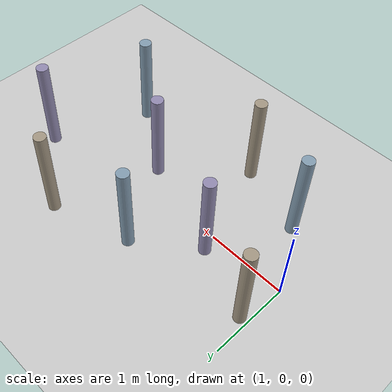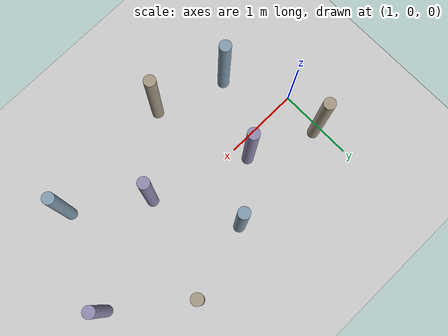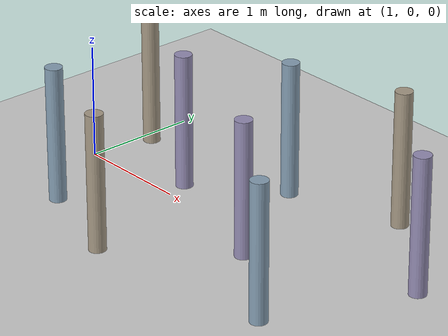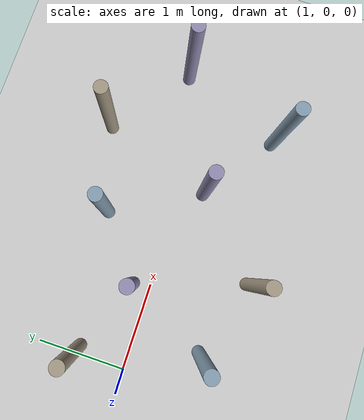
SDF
<?xml version="1.0"?>
<sdf version="1.6">
    <world name="pillar_obstacles">
        <scene>
            <ambient>0.4 0.4 0.4 1</ambient>
            <background>0.7 0.7 0.8 1</background>
            <shadows>true</shadows>
        </scene>

        <plugin name="gazebo_ros_state" filename="libgazebo_ros_state.so">
            <ros>
                <namespace>/gazebo</namespace>
            </ros>
            <update_rate>50.0</update_rate>
        </plugin>

        <light name="sun" type="directional">
            <cast_shadows>true</cast_shadows>
            <pose>0 0 10 0 0 0</pose>
            <diffuse>0.8 0.8 0.8 1</diffuse>
            <specular>0.2 0.2 0.2 1</specular>
            <attenuation>
                <range>1000</range>
                <constant>0.9</constant>
                <linear>0.01</linear>
                <quadratic>0.001</quadratic>
            </attenuation>
            <direction>-0.5 0.1 -0.9</direction>
        </light>

        <model name="ground_plane">
            <static>true</static>
            <link name="link">
                <collision name="collision">
                    <geometry>
                        <plane>
                            <normal>0 0 1</normal>
                            <size>20 20</size>
                        </plane>
                    </geometry>
                </collision>
                <visual name="visual">
                    <geometry>
                        <plane>
                            <normal>0 0 1</normal>
                            <size>20 20</size>
                        </plane>
                    </geometry>
                    <material>
                        <ambient>0.8 0.8 0.8 1</ambient>
                        <diffuse>0.8 0.8 0.8 1</diffuse>
                    </material>
                </visual>
            </link>
        </model>

        <model name="pillar_obstacle_1">
            <static>true</static>
            <pose>1.10 0.55 0.60 0 0 0</pose>
            <link name="link">
                <collision name="collision">
                    <geometry>
                        <cylinder>
                            <radius>0.075</radius>
                            <length>1.20</length>
                        </cylinder>
                    </geometry>
                </collision>
                <visual name="visual">
                    <geometry>
                        <cylinder>
                            <radius>0.075</radius>
                            <length>1.20</length>
                        </cylinder>
                    </geometry>
                    <material>
                        <ambient>0.55 0.50 0.45 1</ambient>
                        <diffuse>0.65 0.60 0.52 1</diffuse>
                    </material>
                </visual>
            </link>
        </model>

        <model name="pillar_obstacle_2">
            <static>true</static>
            <pose>1.45 -0.75 0.60 0 0 0</pose>
            <link name="link">
                <collision name="collision">
                    <geometry>
                        <cylinder>
                            <radius>0.075</radius>
                            <length>1.20</length>
                        </cylinder>
                    </geometry>
                </collision>
                <visual name="visual">
                    <geometry>
                        <cylinder>
                            <radius>0.075</radius>
                            <length>1.20</length>
                        </cylinder>
                    </geometry>
                    <material>
                        <ambient>0.45 0.52 0.58 1</ambient>
                        <diffuse>0.52 0.62 0.70 1</diffuse>
                    </material>
                </visual>
            </link>
        </model>

        <model name="pillar_obstacle_3">
            <static>true</static>
            <pose>1.95 0.20 0.60 0 0 0</pose>
            <link name="link">
                <collision name="collision">
                    <geometry>
                        <cylinder>
                            <radius>0.075</radius>
                            <length>1.20</length>
                        </cylinder>
                    </geometry>
                </collision>
                <visual name="visual">
                    <geometry>
                        <cylinder>
                            <radius>0.075</radius>
                            <length>1.20</length>
                        </cylinder>
                    </geometry>
                    <material>
                        <ambient>0.50 0.48 0.58 1</ambient>
                        <diffuse>0.58 0.55 0.70 1</diffuse>
                    </material>
                </visual>
            </link>
        </model>

        <model name="pillar_obstacle_4">
            <static>true</static>
            <pose>2.35 -1.05 0.60 0 0 0</pose>
            <link name="link">
                <collision name="collision">
                    <geometry>
                        <cylinder>
                            <radius>0.075</radius>
                            <length>1.20</length>
                        </cylinder>
                    </geometry>
                </collision>
                <visual name="visual">
                    <geometry>
                        <cylinder>
                            <radius>0.075</radius>
                            <length>1.20</length>
                        </cylinder>
                    </geometry>
                    <material>
                        <ambient>0.55 0.50 0.45 1</ambient>
                        <diffuse>0.65 0.60 0.52 1</diffuse>
                    </material>
                </visual>
            </link>
        </model>

        <model name="pillar_obstacle_5">
            <static>true</static>
            <pose>2.65 0.75 0.60 0 0 0</pose>
            <link name="link">
                <collision name="collision">
                    <geometry>
                        <cylinder>
                            <radius>0.075</radius>
                            <length>1.20</length>
                        </cylinder>
                    </geometry>
                </collision>
                <visual name="visual">
                    <geometry>
                        <cylinder>
                            <radius>0.075</radius>
                            <length>1.20</length>
                        </cylinder>
                    </geometry>
                    <material>
                        <ambient>0.45 0.52 0.58 1</ambient>
                        <diffuse>0.52 0.62 0.70 1</diffuse>
                    </material>
                </visual>
            </link>
        </model>

        <model name="pillar_obstacle_6">
            <static>true</static>
            <pose>3.20 -0.25 0.60 0 0 0</pose>
            <link name="link">
                <collision name="collision">
                    <geometry>
                        <cylinder>
                            <radius>0.075</radius>
                            <length>1.20</length>
                        </cylinder>
                    </geometry>
                </collision>
                <visual name="visual">
                    <geometry>
                        <cylinder>
                            <radius>0.075</radius>
                            <length>1.20</length>
                        </cylinder>
                    </geometry>
                    <material>
                        <ambient>0.50 0.48 0.58 1</ambient>
                        <diffuse>0.58 0.55 0.70 1</diffuse>
                    </material>
                </visual>
            </link>
        </model>

        <model name="pillar_obstacle_7">
            <static>true</static>
            <pose>3.65 1.05 0.60 0 0 0</pose>
            <link name="link">
                <collision name="collision">
                    <geometry>
                        <cylinder>
                            <radius>0.075</radius>
                            <length>1.20</length>
                        </cylinder>
                    </geometry>
                </collision>
                <visual name="visual">
                    <geometry>
                        <cylinder>
                            <radius>0.075</radius>
                            <length>1.20</length>
                        </cylinder>
                    </geometry>
                    <material>
                        <ambient>0.55 0.50 0.45 1</ambient>
                        <diffuse>0.65 0.60 0.52 1</diffuse>
                    </material>
                </visual>
            </link>
        </model>

        <model name="pillar_obstacle_8">
            <static>true</static>
            <pose>4.05 -0.85 0.60 0 0 0</pose>
            <link name="link">
                <collision name="collision">
                    <geometry>
                        <cylinder>
                            <radius>0.075</radius>
                            <length>1.20</length>
                        </cylinder>
                    </geometry>
                </collision>
                <visual name="visual">
                    <geometry>
                        <cylinder>
                            <radius>0.075</radius>
                            <length>1.20</length>
                        </cylinder>
                    </geometry>
                    <material>
                        <ambient>0.45 0.52 0.58 1</ambient>
                        <diffuse>0.52 0.62 0.70 1</diffuse>
                    </material>
                </visual>
            </link>
        </model>

        <model name="pillar_obstacle_9">
            <static>true</static>
            <pose>4.55 0.35 0.60 0 0 0</pose>
            <link name="link">
                <collision name="collision">
                    <geometry>
                        <cylinder>
                            <radius>0.075</radius>
                            <length>1.20</length>
                        </cylinder>
                    </geometry>
                </collision>
                <visual name="visual">
                    <geometry>
                        <cylinder>
                            <radius>0.075</radius>
                            <length>1.20</length>
                        </cylinder>
                    </geometry>
                    <material>
                        <ambient>0.50 0.48 0.58 1</ambient>
                        <diffuse>0.58 0.55 0.70 1</diffuse>
                    </material>
                </visual>
            </link>
        </model>

        <physics name="default_physics" type="ode">
            <max_step_size>0.001</max_step_size>
            <real_time_factor>1.0</real_time_factor>
            <real_time_update_rate>1000</real_time_update_rate>
        </physics>
    </world>
</sdf>
